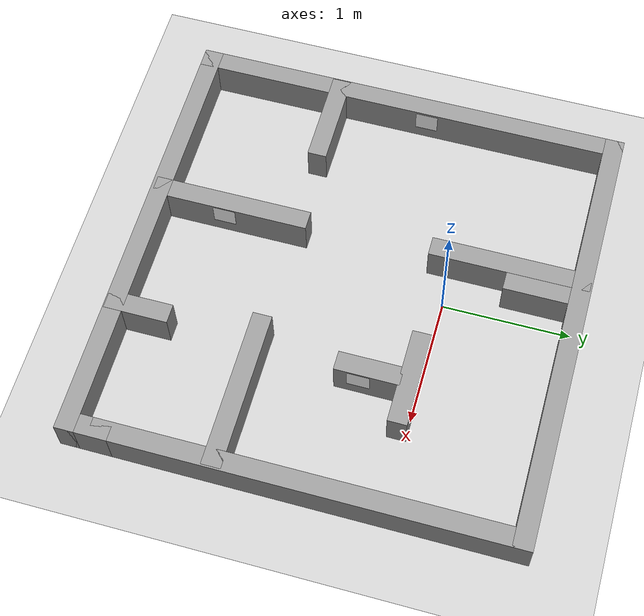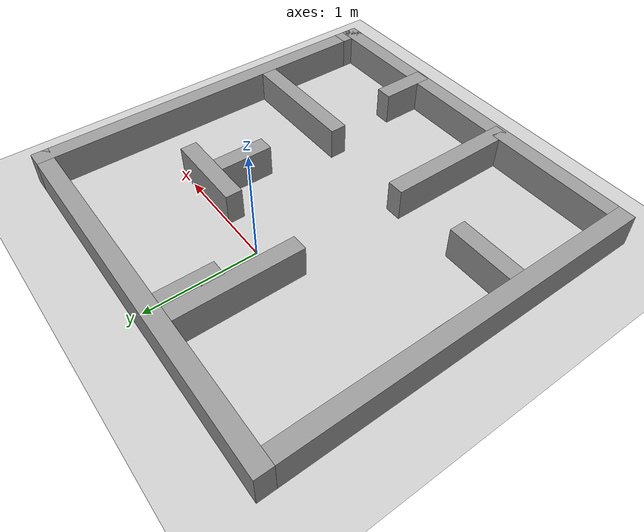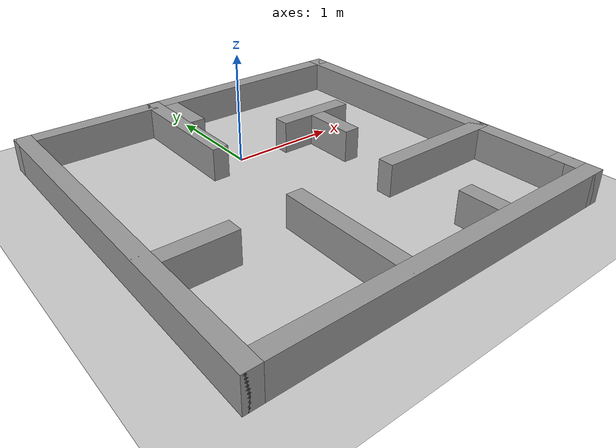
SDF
<sdf version="1.7">
 <world name="default">
  <light name="sun" type="directional">
   <pose>0 0 10 0 -0 0</pose>
   <diffuse>0.8 0.8 0.8 1</diffuse>
   <specular>0.2 0.2 0.2 1</specular>
   <attenuation>
    <range>1000</range>
    <constant>0.9</constant>
    <linear>0.01</linear>
    <quadratic>0.001</quadratic>
   </attenuation>
   <direction>-0.5 0.1 -0.9</direction>
   <spot><inner_angle>0</inner_angle><outer_angle>0</outer_angle><falloff>0</falloff></spot>
  </light>
  <model name="ground_plane">
   <static>1</static>
   <link name="link">
    <collision name="collision">
     <geometry><plane><normal>0 0 1</normal><size>100 100</size></plane></geometry>
     <surface><friction><ode><mu>100</mu><mu2>50</mu2></ode></friction></surface>
    </collision>
    <visual name="visual">
     <cast_shadows>0</cast_shadows>
     <geometry><plane><normal>0 0 1</normal><size>100 100</size></plane></geometry>
     <material>
      <script><uri>file://media/materials/scripts/gazebo.material</uri><name>Gazebo/Grey</name></script>
     </material>
    </visual>
   </link>
  </model>
  <gravity>0 0 -9.8</gravity>
  <magnetic_field>6e-06 2.3e-05 -4.2e-05</magnetic_field>
  <atmosphere type="adiabatic"/>
  <physics type="ode">
   <max_step_size>0.001</max_step_size>
   <real_time_factor>1</real_time_factor>
   <real_time_update_rate>1000</real_time_update_rate>
  </physics>
  <scene><ambient>0.4 0.4 0.4 1</ambient><background>0.7 0.7 0.7 1</background><shadows>1</shadows></scene>
  <audio><device>default</device></audio>
  <spherical_coordinates>
   <surface_model>EARTH_WGS84</surface_model>
   <latitude_deg>0</latitude_deg>
   <longitude_deg>0</longitude_deg>
   <elevation>0</elevation>
   <heading_deg>0</heading_deg>
  </spherical_coordinates>
  <model name="labmapfixed">
   <pose>0.093 -0.677 0 0 -0 0</pose>
   <link name="Wall_24">
    <collision name="Wall_24_Collision">
     <geometry><box><size>3.25 0.15 0.3</size></box></geometry>
     <pose>0 0 0.15 0 -0 0</pose>
    </collision>
    <visual name="Wall_24_Visual">
     <pose>0 0 0.15 0 -0 0</pose>
     <geometry><box><size>3.25 0.15 0.3</size></box></geometry>
     <material>
      <script><uri>file://media/materials/scripts/gazebo.material</uri><name>Gazebo/Grey</name></script>
      <ambient>1 1 1 1</ambient>
     </material>
     <meta><layer>0</layer></meta>
    </visual>
    <pose>1.675 0.125 0 0 -0 -1.5708</pose>
   </link>
   <link name="Wall_26">
    <collision name="Wall_26_Collision">
     <geometry><box><size>3.5 0.15 0.3</size></box></geometry>
     <pose>0 0 0.15 0 -0 0</pose>
    </collision>
    <visual name="Wall_26_Visual">
     <pose>0 0 0.15 0 -0 0</pose>
     <geometry><box><size>3.5 0.15 0.3</size></box></geometry>
     <material>
      <script><uri>file://media/materials/scripts/gazebo.material</uri><name>Gazebo/Grey</name></script>
      <ambient>1 1 1 1</ambient>
     </material>
     <meta><layer>0</layer></meta>
    </visual>
    <pose>0 1.675 0 0 -0 3.14159</pose>
   </link>
   <link name="Wall_27">
    <collision name="Wall_27_Collision">
     <geometry><box><size>3.5 0.15 0.3</size></box></geometry>
     <pose>0 0 0.15 0 -0 0</pose>
    </collision>
    <visual name="Wall_27_Visual">
     <pose>0 0 0.15 0 -0 0</pose>
     <geometry><box><size>3.5 0.15 0.3</size></box></geometry>
     <material>
      <script><uri>file://media/materials/scripts/gazebo.material</uri><name>Gazebo/Grey</name></script>
      <ambient>1 1 1 1</ambient>
     </material>
     <meta><layer>0</layer></meta>
    </visual>
    <pose>-1.675 0 0 0 -0 -1.5708</pose>
   </link>
   <link name="Wall_28">
    <collision name="Wall_28_Collision">
     <geometry><box><size>3.5 0.15 0.3</size></box></geometry>
     <pose>0 0 0.15 0 -0 0</pose>
    </collision>
    <visual name="Wall_28_Visual">
     <pose>0 0 0.15 0 -0 0</pose>
     <geometry><box><size>3.5 0.15 0.3</size></box></geometry>
     <material>
      <script><uri>file://media/materials/scripts/gazebo.material</uri><name>Gazebo/Grey</name></script>
      <ambient>1 1 1 1</ambient>
     </material>
     <meta><layer>0</layer></meta>
    </visual>
    <pose>0 -1.675 0 0 -0 0</pose>
   </link>
   <link name="Wall_29">
    <collision name="Wall_29_Collision">
     <geometry><box><size>0.4 0.15 0.3</size></box></geometry>
     <pose>0 0 0.15 0 -0 0</pose>
    </collision>
    <visual name="Wall_29_Visual">
     <pose>0 0 0.15 0 -0 0</pose>
     <geometry><box><size>0.4 0.15 0.3</size></box></geometry>
     <material>
      <script><uri>file://media/materials/scripts/gazebo.material</uri><name>Gazebo/Grey</name></script>
      <ambient>1 1 1 1</ambient>
     </material>
     <meta><layer>0</layer></meta>
    </visual>
    <pose>1.675 -1.55 0 0 -0 1.5708</pose>
   </link>
   <link name="Wall_31">
    <collision name="Wall_31_Collision">
     <geometry><box><size>0.75 0.15 0.3</size></box></geometry>
     <pose>0 0 0.15 0 -0 0</pose>
    </collision>
    <visual name="Wall_31_Visual">
     <pose>0 0 0.15 0 -0 0</pose>
     <geometry><box><size>0.75 0.15 0.3</size></box></geometry>
     <material>
      <script><uri>file://media/materials/scripts/gazebo.material</uri><name>Gazebo/Grey</name></script>
      <ambient>1 1 1 1</ambient>
     </material>
     <meta><layer>0</layer></meta>
    </visual>
    <pose>-1.369 -0.581 0 0 -0 0</pose>
   </link>
   <link name="Wall_33">
    <collision name="Wall_33_Collision">
     <geometry><box><size>1.25 0.15 0.3</size></box></geometry>
     <pose>0 0 0.15 0 -0 0</pose>
    </collision>
    <visual name="Wall_33_Visual">
     <pose>0 0 0.15 0 -0 0</pose>
     <geometry><box><size>1.25 0.15 0.3</size></box></geometry>
     <material>
      <script><uri>file://media/materials/scripts/gazebo.material</uri><name>Gazebo/Grey</name></script>
      <ambient>1 1 1 1</ambient>
     </material>
     <meta><layer>0</layer></meta>
    </visual>
    <pose>-0.39 -1.101 0 0 -0 1.5708</pose>
   </link>
   <link name="Wall_35">
    <collision name="Wall_35_Collision">
     <geometry><box><size>0.5 0.15 0.3</size></box></geometry>
     <pose>0 0 0.15 0 -0 0</pose>
    </collision>
    <visual name="Wall_35_Visual">
     <pose>0 0 0.15 0 -0 0</pose>
     <geometry><box><size>0.5 0.15 0.3</size></box></geometry>
     <material>
      <script><uri>file://media/materials/scripts/gazebo.material</uri><name>Gazebo/Grey</name></script>
      <ambient>1 1 1 1</ambient>
     </material>
     <meta><layer>0</layer></meta>
    </visual>
    <pose>0.663 -1.492 0 0 -0 1.5708</pose>
   </link>
   <link name="Wall_37">
    <collision name="Wall_37_Collision">
     <geometry><box><size>1.25 0.15 0.3</size></box></geometry>
     <pose>0 0 0.15 0 -0 0</pose>
    </collision>
    <visual name="Wall_37_Visual">
     <pose>0 0 0.15 0 -0 0</pose>
     <geometry><box><size>1.25 0.15 0.3</size></box></geometry>
     <material>
      <script><uri>file://media/materials/scripts/gazebo.material</uri><name>Gazebo/Grey</name></script>
      <ambient>1 1 1 1</ambient>
     </material>
     <meta><layer>0</layer></meta>
    </visual>
    <pose>1.111 -0.575 0 0 -0 3.14159</pose>
   </link>
   <link name="Wall_39">
    <collision name="Wall_39_Collision">
     <geometry><box><size>1.25 0.15 0.3</size></box></geometry>
     <pose>0 0 0.15 0 -0 0</pose>
    </collision>
    <visual name="Wall_39_Visual">
     <pose>0 0 0.15 0 -0 0</pose>
     <geometry><box><size>1.25 0.15 0.3</size></box></geometry>
     <material>
      <script><uri>file://media/materials/scripts/gazebo.material</uri><name>Gazebo/Grey</name></script>
      <ambient>1 1 1 1</ambient>
     </material>
     <meta><layer>0</layer></meta>
    </visual>
    <pose>-0.423 1.113 0 0 -0 -1.5708</pose>
   </link>
   <link name="Wall_45">
    <collision name="Wall_45_Collision">
     <geometry><box><size>0.75 0.15 0.3</size></box></geometry>
     <pose>0 0 0.15 0 -0 0</pose>
    </collision>
    <visual name="Wall_45_Visual">
     <pose>0 0 0.15 0 -0 0</pose>
     <geometry><box><size>0.75 0.15 0.3</size></box></geometry>
     <material>
      <script><uri>file://media/materials/scripts/gazebo.material</uri><name>Gazebo/Grey</name></script>
      <ambient>1 1 1 1</ambient>
     </material>
     <meta><layer>0</layer></meta>
    </visual>
    <pose>0.693 0.61 0 0 -0 0</pose>
   </link>
   <link name="Wall_47">
    <collision name="Wall_47_Collision">
     <geometry><box><size>0.5 0.15 0.3</size></box></geometry>
     <pose>0 0 0.15 0 -0 0</pose>
    </collision>
    <visual name="Wall_47_Visual">
     <pose>0 0 0.15 0 -0 0</pose>
     <geometry><box><size>0.5 0.15 0.3</size></box></geometry>
     <material>
      <script><uri>file://media/materials/scripts/gazebo.material</uri><name>Gazebo/Grey</name></script>
      <ambient>1 1 1 1</ambient>
     </material>
     <meta><layer>0</layer></meta>
    </visual>
    <pose>0.702 0.303 0 0 -0 -1.5708</pose>
   </link>
   <link name="Wall_50">
    <collision name="Wall_50_Collision">
     <geometry><box><size>0.5 0.15 0.3</size></box></geometry>
     <pose>0 0 0.15 0 -0 0</pose>
    </collision>
    <visual name="Wall_50_Visual">
     <pose>0 0 0.15 0 -0 0</pose>
     <geometry><box><size>0.5 0.15 0.3</size></box></geometry>
     <material>
      <script><uri>file://media/materials/scripts/gazebo.material</uri><name>Gazebo/Grey</name></script>
      <ambient>1 1 1 1</ambient>
     </material>
     <meta><layer>0</layer></meta>
    </visual>
    <pose>-0.28 1.35 0 0 -0 -1.5708</pose>
   </link>
   <static>1</static>
  </model>
  <model name="marker_0">
   <link name="marker">
    <pose>0 0 0.2 3.14159 1.57079 3.14159</pose>
    <visual name="visual">
     <geometry><box><size>0.1778 0.1778 1e-05</size></box></geometry>
     <material>
      <script>
       <uri>model://marker_0/materials/scripts</uri>
       <uri>model://marker_0/materials/textures</uri>
       <name>Marker0/Marker</name>
      </script>
      <ambient>1 1 1 1</ambient>
      <diffuse>1 1 1 1</diffuse>
      <specular>0 0 0 1</specular>
      <emissive>1 1 1 0</emissive>
      <shader type="vertex"><normal_map>__default__</normal_map></shader>
     </material>
    </visual>
    <collision name="collision"><geometry><box><size>0.1778 0.1778 1e-05</size></box></geometry></collision>
   </link>
   <link name="marker_pad">
    <pose relative_to="marker">0 0 -1e-05 0 -0 0</pose>
    <visual name="visual">
     <geometry><box><size>0.1778 0.1778 1e-05</size></box></geometry>
     <material>
      <lighting>1</lighting>
      <script><uri>file://media/materials/scripts/gazebo.material</uri><name>Gazebo/White</name></script>
      <ambient>0.3 0.3 0.3 1</ambient>
      <diffuse>0.7 0.7 0.7 1</diffuse>
      <specular>0.01 0.01 0.01 1</specular>
      <emissive>1 1 1 0</emissive>
      <shader type="vertex"><normal_map>__default__</normal_map></shader>
     </material>
    </visual>
    <collision name="collision"><geometry><box><size>0.1778 0.1778 1e-05</size></box></geometry></collision>
   </link>
   <joint name="marker_JOINT_marker_pad" type="revolute">
    <parent>marker</parent>
    <child>marker_pad</child>
    <axis>
     <xyz>0 0 1</xyz>
     <limit><upper>0</upper><lower>0</lower></limit>
     <dynamics><spring_reference>0</spring_reference><spring_stiffness>0</spring_stiffness></dynamics>
    </axis>
   </joint>
   <static>1</static>
   <pose>-1.50087 -0.508325 0 0 -0 0</pose>
  </model>
  <model name="marker_0_0">
   <link name="marker">
    <pose>0 0 0.2 3.14159 1.57079 3.14159</pose>
    <visual name="visual">
     <geometry><box><size>0.1778 0.1778 1e-05</size></box></geometry>
     <material>
      <script>
       <uri>model://marker_0/materials/scripts</uri>
       <uri>model://marker_0/materials/textures</uri>
       <name>Marker0/Marker</name>
      </script>
      <ambient>1 1 1 1</ambient>
      <diffuse>1 1 1 1</diffuse>
      <specular>0 0 0 1</specular>
      <emissive>1 1 1 0</emissive>
      <shader type="vertex"><normal_map>__default__</normal_map></shader>
     </material>
    </visual>
    <collision name="collision"><geometry><box><size>0.1778 0.1778 1e-05</size></box></geometry></collision>
   </link>
   <link name="marker_pad">
    <pose relative_to="marker">0 0 -1e-05 0 -0 0</pose>
    <visual name="visual">
     <geometry><box><size>0.1778 0.1778 1e-05</size></box></geometry>
     <material>
      <lighting>1</lighting>
      <script><uri>file://media/materials/scripts/gazebo.material</uri><name>Gazebo/White</name></script>
      <ambient>0.3 0.3 0.3 1</ambient>
      <diffuse>0.7 0.7 0.7 1</diffuse>
      <specular>0.01 0.01 0.01 1</specular>
      <emissive>1 1 1 0</emissive>
      <shader type="vertex"><normal_map>__default__</normal_map></shader>
     </material>
    </visual>
    <collision name="collision"><geometry><box><size>0.1778 0.1778 1e-05</size></box></geometry></collision>
   </link>
   <joint name="marker_JOINT_marker_pad" type="revolute">
    <parent>marker</parent>
    <child>marker_pad</child>
    <axis>
     <xyz>0 0 1</xyz>
     <limit><upper>0</upper><lower>0</lower></limit>
     <dynamics><spring_reference>0</spring_reference><spring_stiffness>0</spring_stiffness></dynamics>
    </axis>
   </joint>
   <static>1</static>
   <pose>0.871514 -0.435644 0 0 -0 0</pose>
  </model>
  <model name="marker_0_1">
   <link name="marker">
    <pose>0 0 0.2 3.14159 1.57079 3.14159</pose>
    <visual name="visual">
     <geometry><box><size>0.1778 0.1778 1e-05</size></box></geometry>
     <material>
      <script>
       <uri>model://marker_0/materials/scripts</uri>
       <uri>model://marker_0/materials/textures</uri>
       <name>Marker0/Marker</name>
      </script>
      <ambient>1 1 1 1</ambient>
      <diffuse>1 1 1 1</diffuse>
      <specular>0 0 0 1</specular>
      <emissive>1 1 1 0</emissive>
      <shader type="vertex"><normal_map>__default__</normal_map></shader>
     </material>
    </visual>
    <collision name="collision"><geometry><box><size>0.1778 0.1778 1e-05</size></box></geometry></collision>
   </link>
   <link name="marker_pad">
    <pose relative_to="marker">0 0 -1e-05 0 -0 0</pose>
    <visual name="visual">
     <geometry><box><size>0.1778 0.1778 1e-05</size></box></geometry>
     <material>
      <lighting>1</lighting>
      <script><uri>file://media/materials/scripts/gazebo.material</uri><name>Gazebo/White</name></script>
      <ambient>0.3 0.3 0.3 1</ambient>
      <diffuse>0.7 0.7 0.7 1</diffuse>
      <specular>0.01 0.01 0.01 1</specular>
      <emissive>1 1 1 0</emissive>
      <shader type="vertex"><normal_map>__default__</normal_map></shader>
     </material>
    </visual>
    <collision name="collision"><geometry><box><size>0.1778 0.1778 1e-05</size></box></geometry></collision>
   </link>
   <joint name="marker_JOINT_marker_pad" type="revolute">
    <parent>marker</parent>
    <child>marker_pad</child>
    <axis>
     <xyz>0 0 1</xyz>
     <limit><upper>0</upper><lower>0</lower></limit>
     <dynamics><spring_reference>0</spring_reference><spring_stiffness>0</spring_stiffness></dynamics>
    </axis>
   </joint>
   <static>1</static>
   <pose>-0.221719 -1.81505 0 0 -0 0</pose>
  </model>
 </world>
</sdf>
